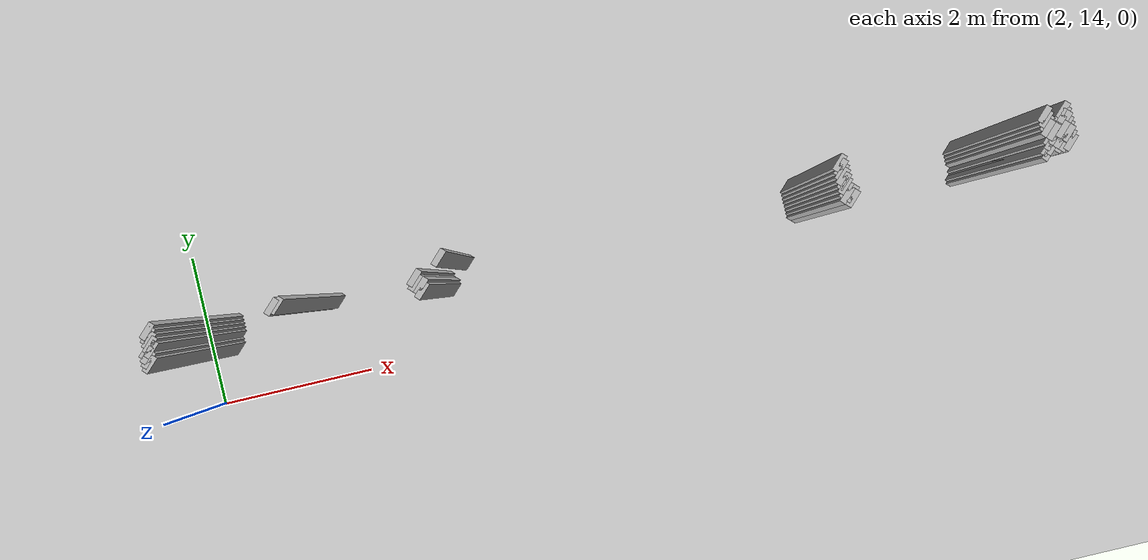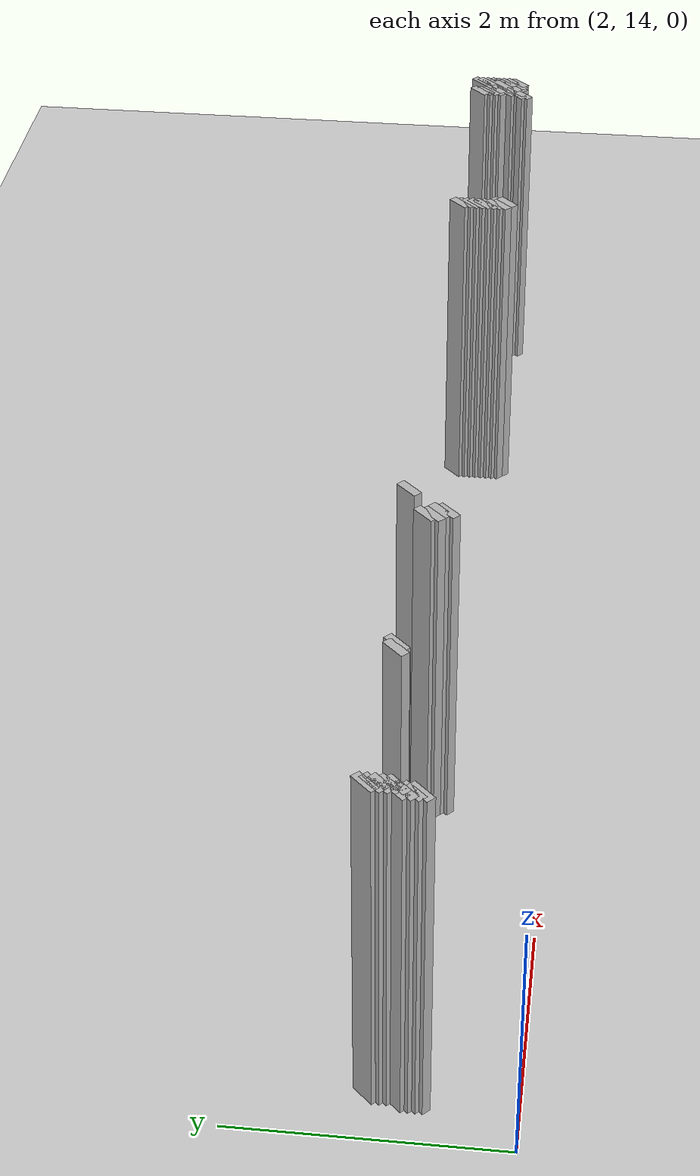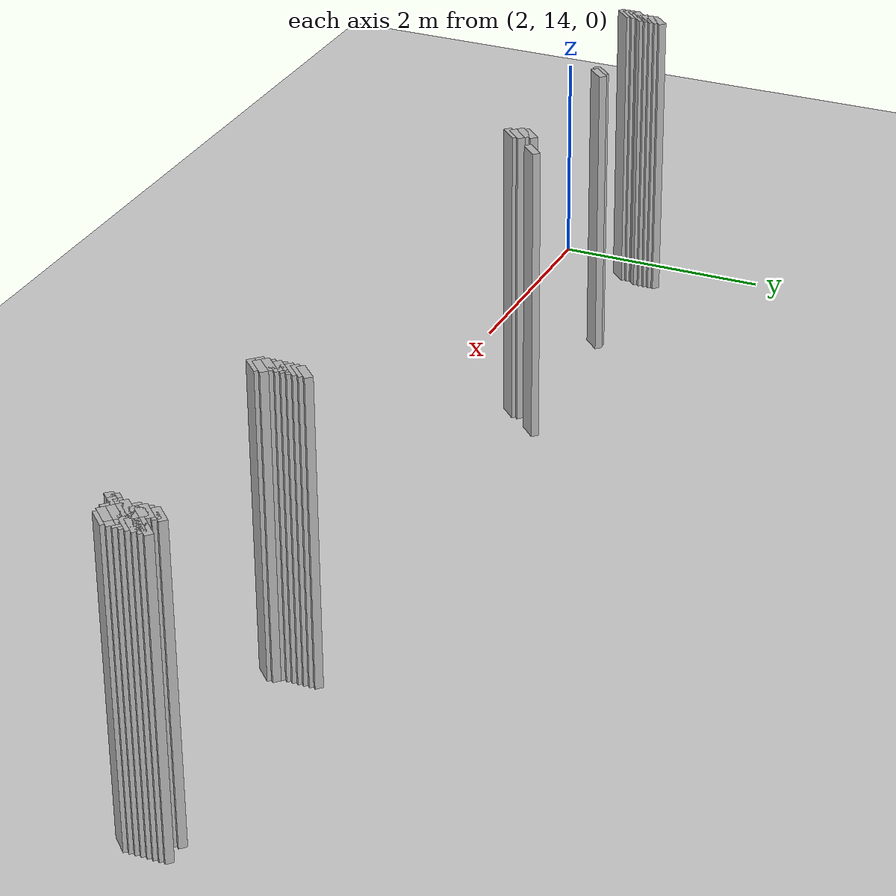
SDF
<sdf version="1.5">
 <world name="default">
  <include><uri>model://ground_plane</uri></include>
  <include><uri>model://sun</uri></include>
  <model name="grey_wall_478">
   <static>1</static>
   <link name="link">
    <pose>5.6000000000000005 15.100000000000001  1.4 0 0 -0.7853981633974483</pose>
    <collision name="collision">
     <geometry><box><size>0.07071067811865576 .2  2.8</size></box></geometry>
    </collision>
    <visual name="visual">
     <cast_shadows>0</cast_shadows>
     <geometry><box><size>0.07071067811865576 .2  2.8</size></box></geometry>
    </visual>
   </link>
  </model>
  <model name="grey_wall_479">
   <static>1</static>
   <link name="link">
    <pose>10.0 15.100000000000001  1.4 0 0 -0.7853981633974483</pose>
    <collision name="collision">
     <geometry><box><size>0.07071067811865576 .2  2.8</size></box></geometry>
    </collision>
    <visual name="visual">
     <cast_shadows>0</cast_shadows>
     <geometry><box><size>0.07071067811865576 .2  2.8</size></box></geometry>
    </visual>
   </link>
  </model>
  <model name="grey_wall_480">
   <static>1</static>
   <link name="link">
    <pose>12.25 15.100000000000001  1.4 0 0 -0.7853981633974483</pose>
    <collision name="collision">
     <geometry><box><size>0.07071067811865576 .2  2.8</size></box></geometry>
    </collision>
    <visual name="visual">
     <cast_shadows>0</cast_shadows>
     <geometry><box><size>0.07071067811865576 .2  2.8</size></box></geometry>
    </visual>
   </link>
  </model>
  <model name="grey_wall_481">
   <static>1</static>
   <link name="link">
    <pose>12.450000000000001 15.100000000000001  1.4 0 0 -0.7853981633974483</pose>
    <collision name="collision">
     <geometry><box><size>0.07071067811865576 .2  2.8</size></box></geometry>
    </collision>
    <visual name="visual">
     <cast_shadows>0</cast_shadows>
     <geometry><box><size>0.07071067811865576 .2  2.8</size></box></geometry>
    </visual>
   </link>
  </model>
  <model name="grey_wall_482">
   <static>1</static>
   <link name="link">
    <pose>2.4000000000000004 15.05  1.4 0 0 -0.7853981633974572</pose>
    <collision name="collision">
     <geometry><box><size>0.07071067811865513 .2  2.8</size></box></geometry>
    </collision>
    <visual name="visual">
     <cast_shadows>0</cast_shadows>
     <geometry><box><size>0.07071067811865513 .2  2.8</size></box></geometry>
    </visual>
   </link>
  </model>
  <model name="grey_wall_483">
   <static>1</static>
   <link name="link">
    <pose>10.0 15.05  1.4 0 0 -0.7853981633974483</pose>
    <collision name="collision">
     <geometry><box><size>0.07071067811865576 .2  2.8</size></box></geometry>
    </collision>
    <visual name="visual">
     <cast_shadows>0</cast_shadows>
     <geometry><box><size>0.07071067811865576 .2  2.8</size></box></geometry>
    </visual>
   </link>
  </model>
  <model name="grey_wall_484">
   <static>1</static>
   <link name="link">
    <pose>12.25 15.05  1.4 0 0 -0.7853981633974483</pose>
    <collision name="collision">
     <geometry><box><size>0.07071067811865576 .2  2.8</size></box></geometry>
    </collision>
    <visual name="visual">
     <cast_shadows>0</cast_shadows>
     <geometry><box><size>0.07071067811865576 .2  2.8</size></box></geometry>
    </visual>
   </link>
  </model>
  <model name="grey_wall_485">
   <static>1</static>
   <link name="link">
    <pose>12.4 15.05  1.4 0 0 -0.7853981633974483</pose>
    <collision name="collision">
     <geometry><box><size>0.07071067811865576 .2  2.8</size></box></geometry>
    </collision>
    <visual name="visual">
     <cast_shadows>0</cast_shadows>
     <geometry><box><size>0.07071067811865576 .2  2.8</size></box></geometry>
    </visual>
   </link>
  </model>
  <model name="grey_wall_486">
   <static>1</static>
   <link name="link">
    <pose>12.450000000000001 15.05  1.4 0 0 -0.7853981633974483</pose>
    <collision name="collision">
     <geometry><box><size>0.07071067811865576 .2  2.8</size></box></geometry>
    </collision>
    <visual name="visual">
     <cast_shadows>0</cast_shadows>
     <geometry><box><size>0.07071067811865576 .2  2.8</size></box></geometry>
    </visual>
   </link>
  </model>
  <model name="grey_wall_487">
   <static>1</static>
   <link name="link">
    <pose>2.4000000000000004 15.0  1.4 0 0 -0.7853981633974572</pose>
    <collision name="collision">
     <geometry><box><size>0.07071067811865513 .2  2.8</size></box></geometry>
    </collision>
    <visual name="visual">
     <cast_shadows>0</cast_shadows>
     <geometry><box><size>0.07071067811865513 .2  2.8</size></box></geometry>
    </visual>
   </link>
  </model>
  <model name="grey_wall_488">
   <static>1</static>
   <link name="link">
    <pose>3.75 15.0  1.4 0 0 -0.7853981633974572</pose>
    <collision name="collision">
     <geometry><box><size>0.07071067811865513 .2  2.8</size></box></geometry>
    </collision>
    <visual name="visual">
     <cast_shadows>0</cast_shadows>
     <geometry><box><size>0.07071067811865513 .2  2.8</size></box></geometry>
    </visual>
   </link>
  </model>
  <model name="grey_wall_489">
   <static>1</static>
   <link name="link">
    <pose>3.8000000000000003 15.0  1.4 0 0 -0.7853981633974572</pose>
    <collision name="collision">
     <geometry><box><size>0.07071067811865513 .2  2.8</size></box></geometry>
    </collision>
    <visual name="visual">
     <cast_shadows>0</cast_shadows>
     <geometry><box><size>0.07071067811865513 .2  2.8</size></box></geometry>
    </visual>
   </link>
  </model>
  <model name="grey_wall_490">
   <static>1</static>
   <link name="link">
    <pose>10.0 15.0  1.4 0 0 -0.7853981633974483</pose>
    <collision name="collision">
     <geometry><box><size>0.07071067811865576 .2  2.8</size></box></geometry>
    </collision>
    <visual name="visual">
     <cast_shadows>0</cast_shadows>
     <geometry><box><size>0.07071067811865576 .2  2.8</size></box></geometry>
    </visual>
   </link>
  </model>
  <model name="grey_wall_491">
   <static>1</static>
   <link name="link">
    <pose>12.25 15.0  1.4 0 0 -0.7853981633974483</pose>
    <collision name="collision">
     <geometry><box><size>0.07071067811865576 .2  2.8</size></box></geometry>
    </collision>
    <visual name="visual">
     <cast_shadows>0</cast_shadows>
     <geometry><box><size>0.07071067811865576 .2  2.8</size></box></geometry>
    </visual>
   </link>
  </model>
  <model name="grey_wall_492">
   <static>1</static>
   <link name="link">
    <pose>12.4 15.0  1.4 0 0 -0.7853981633974483</pose>
    <collision name="collision">
     <geometry><box><size>0.07071067811865576 .2  2.8</size></box></geometry>
    </collision>
    <visual name="visual">
     <cast_shadows>0</cast_shadows>
     <geometry><box><size>0.07071067811865576 .2  2.8</size></box></geometry>
    </visual>
   </link>
  </model>
  <model name="grey_wall_493">
   <static>1</static>
   <link name="link">
    <pose>12.450000000000001 15.0  1.4 0 0 -0.7853981633974483</pose>
    <collision name="collision">
     <geometry><box><size>0.07071067811865576 .2  2.8</size></box></geometry>
    </collision>
    <visual name="visual">
     <cast_shadows>0</cast_shadows>
     <geometry><box><size>0.07071067811865576 .2  2.8</size></box></geometry>
    </visual>
   </link>
  </model>
  <model name="grey_wall_494">
   <static>1</static>
   <link name="link">
    <pose>2.4000000000000004 14.950000000000001  1.4 0 0 -0.7853981633974572</pose>
    <collision name="collision">
     <geometry><box><size>0.07071067811865513 .2  2.8</size></box></geometry>
    </collision>
    <visual name="visual">
     <cast_shadows>0</cast_shadows>
     <geometry><box><size>0.07071067811865513 .2  2.8</size></box></geometry>
    </visual>
   </link>
  </model>
  <model name="grey_wall_495">
   <static>1</static>
   <link name="link">
    <pose>5.300000000000001 14.950000000000001  1.4 0 0 -0.7853981633974483</pose>
    <collision name="collision">
     <geometry><box><size>0.07071067811865576 .2  2.8</size></box></geometry>
    </collision>
    <visual name="visual">
     <cast_shadows>0</cast_shadows>
     <geometry><box><size>0.07071067811865576 .2  2.8</size></box></geometry>
    </visual>
   </link>
  </model>
  <model name="grey_wall_496">
   <static>1</static>
   <link name="link">
    <pose>10.0 14.950000000000001  1.4 0 0 -0.7853981633974483</pose>
    <collision name="collision">
     <geometry><box><size>0.07071067811865576 .2  2.8</size></box></geometry>
    </collision>
    <visual name="visual">
     <cast_shadows>0</cast_shadows>
     <geometry><box><size>0.07071067811865576 .2  2.8</size></box></geometry>
    </visual>
   </link>
  </model>
  <model name="grey_wall_497">
   <static>1</static>
   <link name="link">
    <pose>12.25 14.950000000000001  1.4 0 0 -0.7853981633974483</pose>
    <collision name="collision">
     <geometry><box><size>0.07071067811865576 .2  2.8</size></box></geometry>
    </collision>
    <visual name="visual">
     <cast_shadows>0</cast_shadows>
     <geometry><box><size>0.07071067811865576 .2  2.8</size></box></geometry>
    </visual>
   </link>
  </model>
  <model name="grey_wall_498">
   <static>1</static>
   <link name="link">
    <pose>12.3 14.950000000000001  1.4 0 0 -0.7853981633974483</pose>
    <collision name="collision">
     <geometry><box><size>0.07071067811865576 .2  2.8</size></box></geometry>
    </collision>
    <visual name="visual">
     <cast_shadows>0</cast_shadows>
     <geometry><box><size>0.07071067811865576 .2  2.8</size></box></geometry>
    </visual>
   </link>
  </model>
  <model name="grey_wall_499">
   <static>1</static>
   <link name="link">
    <pose>12.450000000000001 14.950000000000001  1.4 0 0 -0.7853981633974483</pose>
    <collision name="collision">
     <geometry><box><size>0.07071067811865576 .2  2.8</size></box></geometry>
    </collision>
    <visual name="visual">
     <cast_shadows>0</cast_shadows>
     <geometry><box><size>0.07071067811865576 .2  2.8</size></box></geometry>
    </visual>
   </link>
  </model>
  <model name="grey_wall_500">
   <static>1</static>
   <link name="link">
    <pose>2.4000000000000004 14.9  1.4 0 0 -0.7853981633974572</pose>
    <collision name="collision">
     <geometry><box><size>0.07071067811865513 .2  2.8</size></box></geometry>
    </collision>
    <visual name="visual">
     <cast_shadows>0</cast_shadows>
     <geometry><box><size>0.07071067811865513 .2  2.8</size></box></geometry>
    </visual>
   </link>
  </model>
  <model name="grey_wall_501">
   <static>1</static>
   <link name="link">
    <pose>5.300000000000001 14.9  1.4 0 0 -0.7853981633974483</pose>
    <collision name="collision">
     <geometry><box><size>0.07071067811865576 .2  2.8</size></box></geometry>
    </collision>
    <visual name="visual">
     <cast_shadows>0</cast_shadows>
     <geometry><box><size>0.07071067811865576 .2  2.8</size></box></geometry>
    </visual>
   </link>
  </model>
  <model name="grey_wall_502">
   <static>1</static>
   <link name="link">
    <pose>10.0 14.9  1.4 0 0 -0.7853981633974483</pose>
    <collision name="collision">
     <geometry><box><size>0.07071067811865576 .2  2.8</size></box></geometry>
    </collision>
    <visual name="visual">
     <cast_shadows>0</cast_shadows>
     <geometry><box><size>0.07071067811865576 .2  2.8</size></box></geometry>
    </visual>
   </link>
  </model>
  <model name="grey_wall_503">
   <static>1</static>
   <link name="link">
    <pose>12.3 14.9  1.4 0 0 -0.7853981633974483</pose>
    <collision name="collision">
     <geometry><box><size>0.07071067811865576 .2  2.8</size></box></geometry>
    </collision>
    <visual name="visual">
     <cast_shadows>0</cast_shadows>
     <geometry><box><size>0.07071067811865576 .2  2.8</size></box></geometry>
    </visual>
   </link>
  </model>
  <model name="grey_wall_504">
   <static>1</static>
   <link name="link">
    <pose>12.4 14.9  1.4 0 0 -0.7853981633974483</pose>
    <collision name="collision">
     <geometry><box><size>0.07071067811865576 .2  2.8</size></box></geometry>
    </collision>
    <visual name="visual">
     <cast_shadows>0</cast_shadows>
     <geometry><box><size>0.07071067811865576 .2  2.8</size></box></geometry>
    </visual>
   </link>
  </model>
  <model name="grey_wall_505">
   <static>1</static>
   <link name="link">
    <pose>12.450000000000001 14.9  1.4 0 0 -0.7853981633974483</pose>
    <collision name="collision">
     <geometry><box><size>0.07071067811865576 .2  2.8</size></box></geometry>
    </collision>
    <visual name="visual">
     <cast_shadows>0</cast_shadows>
     <geometry><box><size>0.07071067811865576 .2  2.8</size></box></geometry>
    </visual>
   </link>
  </model>
  <model name="grey_wall_506">
   <static>1</static>
   <link name="link">
    <pose>2.35 14.850000000000001  1.4 0 0 -0.7853981633974572</pose>
    <collision name="collision">
     <geometry><box><size>0.07071067811865513 .2  2.8</size></box></geometry>
    </collision>
    <visual name="visual">
     <cast_shadows>0</cast_shadows>
     <geometry><box><size>0.07071067811865513 .2  2.8</size></box></geometry>
    </visual>
   </link>
  </model>
  <model name="grey_wall_507">
   <static>1</static>
   <link name="link">
    <pose>2.4000000000000004 14.850000000000001  1.4 0 0 -0.7853981633974572</pose>
    <collision name="collision">
     <geometry><box><size>0.07071067811865513 .2  2.8</size></box></geometry>
    </collision>
    <visual name="visual">
     <cast_shadows>0</cast_shadows>
     <geometry><box><size>0.07071067811865513 .2  2.8</size></box></geometry>
    </visual>
   </link>
  </model>
  <model name="grey_wall_508">
   <static>1</static>
   <link name="link">
    <pose>5.3500000000000005 14.850000000000001  1.4 0 0 -0.7853981633974483</pose>
    <collision name="collision">
     <geometry><box><size>0.07071067811865576 .2  2.8</size></box></geometry>
    </collision>
    <visual name="visual">
     <cast_shadows>0</cast_shadows>
     <geometry><box><size>0.07071067811865576 .2  2.8</size></box></geometry>
    </visual>
   </link>
  </model>
  <model name="grey_wall_509">
   <static>1</static>
   <link name="link">
    <pose>10.0 14.850000000000001  1.4 0 0 -0.7853981633974483</pose>
    <collision name="collision">
     <geometry><box><size>0.07071067811865576 .2  2.8</size></box></geometry>
    </collision>
    <visual name="visual">
     <cast_shadows>0</cast_shadows>
     <geometry><box><size>0.07071067811865576 .2  2.8</size></box></geometry>
    </visual>
   </link>
  </model>
  <model name="grey_wall_510">
   <static>1</static>
   <link name="link">
    <pose>12.25 14.850000000000001  1.4 0 0 -0.7853981633974483</pose>
    <collision name="collision">
     <geometry><box><size>0.07071067811865576 .2  2.8</size></box></geometry>
    </collision>
    <visual name="visual">
     <cast_shadows>0</cast_shadows>
     <geometry><box><size>0.07071067811865576 .2  2.8</size></box></geometry>
    </visual>
   </link>
  </model>
  <model name="grey_wall_511">
   <static>1</static>
   <link name="link">
    <pose>12.3 14.850000000000001  1.4 0 0 -0.7853981633974483</pose>
    <collision name="collision">
     <geometry><box><size>0.07071067811865576 .2  2.8</size></box></geometry>
    </collision>
    <visual name="visual">
     <cast_shadows>0</cast_shadows>
     <geometry><box><size>0.07071067811865576 .2  2.8</size></box></geometry>
    </visual>
   </link>
  </model>
  <model name="grey_wall_512">
   <static>1</static>
   <link name="link">
    <pose>12.4 14.850000000000001  1.4 0 0 -0.7853981633974483</pose>
    <collision name="collision">
     <geometry><box><size>0.07071067811865576 .2  2.8</size></box></geometry>
    </collision>
    <visual name="visual">
     <cast_shadows>0</cast_shadows>
     <geometry><box><size>0.07071067811865576 .2  2.8</size></box></geometry>
    </visual>
   </link>
  </model>
  <model name="grey_wall_513">
   <static>1</static>
   <link name="link">
    <pose>12.450000000000001 14.850000000000001  1.4 0 0 -0.7853981633974483</pose>
    <collision name="collision">
     <geometry><box><size>0.07071067811865576 .2  2.8</size></box></geometry>
    </collision>
    <visual name="visual">
     <cast_shadows>0</cast_shadows>
     <geometry><box><size>0.07071067811865576 .2  2.8</size></box></geometry>
    </visual>
   </link>
  </model>
  <model name="grey_wall_514">
   <static>1</static>
   <link name="link">
    <pose>2.35 14.8  1.4 0 0 -0.7853981633974572</pose>
    <collision name="collision">
     <geometry><box><size>0.07071067811865513 .2  2.8</size></box></geometry>
    </collision>
    <visual name="visual">
     <cast_shadows>0</cast_shadows>
     <geometry><box><size>0.07071067811865513 .2  2.8</size></box></geometry>
    </visual>
   </link>
  </model>
  <model name="grey_wall_515">
   <static>1</static>
   <link name="link">
    <pose>5.3500000000000005 14.8  1.4 0 0 -0.7853981633974483</pose>
    <collision name="collision">
     <geometry><box><size>0.07071067811865576 .2  2.8</size></box></geometry>
    </collision>
    <visual name="visual">
     <cast_shadows>0</cast_shadows>
     <geometry><box><size>0.07071067811865576 .2  2.8</size></box></geometry>
    </visual>
   </link>
  </model>
  <model name="grey_wall_516">
   <static>1</static>
   <link name="link">
    <pose>10.0 14.8  1.4 0 0 -0.7853981633974483</pose>
    <collision name="collision">
     <geometry><box><size>0.07071067811865576 .2  2.8</size></box></geometry>
    </collision>
    <visual name="visual">
     <cast_shadows>0</cast_shadows>
     <geometry><box><size>0.07071067811865576 .2  2.8</size></box></geometry>
    </visual>
   </link>
  </model>
  <model name="grey_wall_517">
   <static>1</static>
   <link name="link">
    <pose>12.25 14.8  1.4 0 0 -0.7853981633974483</pose>
    <collision name="collision">
     <geometry><box><size>0.07071067811865576 .2  2.8</size></box></geometry>
    </collision>
    <visual name="visual">
     <cast_shadows>0</cast_shadows>
     <geometry><box><size>0.07071067811865576 .2  2.8</size></box></geometry>
    </visual>
   </link>
  </model>
  <model name="grey_wall_518">
   <static>1</static>
   <link name="link">
    <pose>12.350000000000001 14.8  1.4 0 0 -0.7853981633974483</pose>
    <collision name="collision">
     <geometry><box><size>0.07071067811865576 .2  2.8</size></box></geometry>
    </collision>
    <visual name="visual">
     <cast_shadows>0</cast_shadows>
     <geometry><box><size>0.07071067811865576 .2  2.8</size></box></geometry>
    </visual>
   </link>
  </model>
  <model name="grey_wall_519">
   <static>1</static>
   <link name="link">
    <pose>12.450000000000001 14.8  1.4 0 0 -0.7853981633974483</pose>
    <collision name="collision">
     <geometry><box><size>0.07071067811865576 .2  2.8</size></box></geometry>
    </collision>
    <visual name="visual">
     <cast_shadows>0</cast_shadows>
     <geometry><box><size>0.07071067811865576 .2  2.8</size></box></geometry>
    </visual>
   </link>
  </model>
  <model name="grey_wall_520">
   <static>1</static>
   <link name="link">
    <pose>2.35 14.75  1.4 0 0 -0.7853981633974572</pose>
    <collision name="collision">
     <geometry><box><size>0.07071067811865513 .2  2.8</size></box></geometry>
    </collision>
    <visual name="visual">
     <cast_shadows>0</cast_shadows>
     <geometry><box><size>0.07071067811865513 .2  2.8</size></box></geometry>
    </visual>
   </link>
  </model>
  <model name="grey_wall_521">
   <static>1</static>
   <link name="link">
    <pose>10.0 14.75  1.4 0 0 -0.7853981633974483</pose>
    <collision name="collision">
     <geometry><box><size>0.07071067811865576 .2  2.8</size></box></geometry>
    </collision>
    <visual name="visual">
     <cast_shadows>0</cast_shadows>
     <geometry><box><size>0.07071067811865576 .2  2.8</size></box></geometry>
    </visual>
   </link>
  </model>
  <model name="grey_wall_522">
   <static>1</static>
   <link name="link">
    <pose>10.05 14.75  1.4 0 0 -0.7853981633974483</pose>
    <collision name="collision">
     <geometry><box><size>0.07071067811865576 .2  2.8</size></box></geometry>
    </collision>
    <visual name="visual">
     <cast_shadows>0</cast_shadows>
     <geometry><box><size>0.07071067811865576 .2  2.8</size></box></geometry>
    </visual>
   </link>
  </model>
  <model name="grey_wall_523">
   <static>1</static>
   <link name="link">
    <pose>12.200000000000001 14.75  1.4 0 0 -0.7853981633974483</pose>
    <collision name="collision">
     <geometry><box><size>0.07071067811865576 .2  2.8</size></box></geometry>
    </collision>
    <visual name="visual">
     <cast_shadows>0</cast_shadows>
     <geometry><box><size>0.07071067811865576 .2  2.8</size></box></geometry>
    </visual>
   </link>
  </model>
  <model name="grey_wall_524">
   <static>1</static>
   <link name="link">
    <pose>12.25 14.75  1.4 0 0 -0.7853981633974483</pose>
    <collision name="collision">
     <geometry><box><size>0.07071067811865576 .2  2.8</size></box></geometry>
    </collision>
    <visual name="visual">
     <cast_shadows>0</cast_shadows>
     <geometry><box><size>0.07071067811865576 .2  2.8</size></box></geometry>
    </visual>
   </link>
  </model>
  <model name="grey_wall_525">
   <static>1</static>
   <link name="link">
    <pose>12.350000000000001 14.75  1.4 0 0 -0.7853981633974483</pose>
    <collision name="collision">
     <geometry><box><size>0.07071067811865576 .2  2.8</size></box></geometry>
    </collision>
    <visual name="visual">
     <cast_shadows>0</cast_shadows>
     <geometry><box><size>0.07071067811865576 .2  2.8</size></box></geometry>
    </visual>
   </link>
  </model>
  <model name="grey_wall_526">
   <static>1</static>
   <link name="link">
    <pose>12.4 14.75  1.4 0 0 -0.7853981633974483</pose>
    <collision name="collision">
     <geometry><box><size>0.07071067811865576 .2  2.8</size></box></geometry>
    </collision>
    <visual name="visual">
     <cast_shadows>0</cast_shadows>
     <geometry><box><size>0.07071067811865576 .2  2.8</size></box></geometry>
    </visual>
   </link>
  </model>
  <model name="grey_wall_527">
   <static>1</static>
   <link name="link">
    <pose>12.450000000000001 14.75  1.4 0 0 -0.7853981633974483</pose>
    <collision name="collision">
     <geometry><box><size>0.07071067811865576 .2  2.8</size></box></geometry>
    </collision>
    <visual name="visual">
     <cast_shadows>0</cast_shadows>
     <geometry><box><size>0.07071067811865576 .2  2.8</size></box></geometry>
    </visual>
   </link>
  </model>
  <model name="grey_wall_528">
   <static>1</static>
   <link name="link">
    <pose>2.35 14.700000000000001  1.4 0 0 -0.7853981633974572</pose>
    <collision name="collision">
     <geometry><box><size>0.07071067811865513 .2  2.8</size></box></geometry>
    </collision>
    <visual name="visual">
     <cast_shadows>0</cast_shadows>
     <geometry><box><size>0.07071067811865513 .2  2.8</size></box></geometry>
    </visual>
   </link>
  </model>
  <model name="grey_wall_529">
   <static>1</static>
   <link name="link">
    <pose>10.05 14.700000000000001  1.4 0 0 -0.7853981633974483</pose>
    <collision name="collision">
     <geometry><box><size>0.07071067811865576 .2  2.8</size></box></geometry>
    </collision>
    <visual name="visual">
     <cast_shadows>0</cast_shadows>
     <geometry><box><size>0.07071067811865576 .2  2.8</size></box></geometry>
    </visual>
   </link>
  </model>
  <model name="grey_wall_530">
   <static>1</static>
   <link name="link">
    <pose>12.200000000000001 14.700000000000001  1.4 0 0 -0.7853981633974483</pose>
    <collision name="collision">
     <geometry><box><size>0.07071067811865576 .2  2.8</size></box></geometry>
    </collision>
    <visual name="visual">
     <cast_shadows>0</cast_shadows>
     <geometry><box><size>0.07071067811865576 .2  2.8</size></box></geometry>
    </visual>
   </link>
  </model>
 </world>
</sdf>
